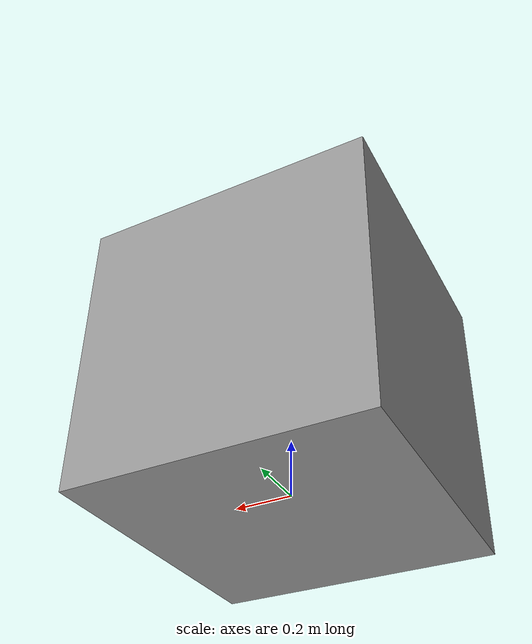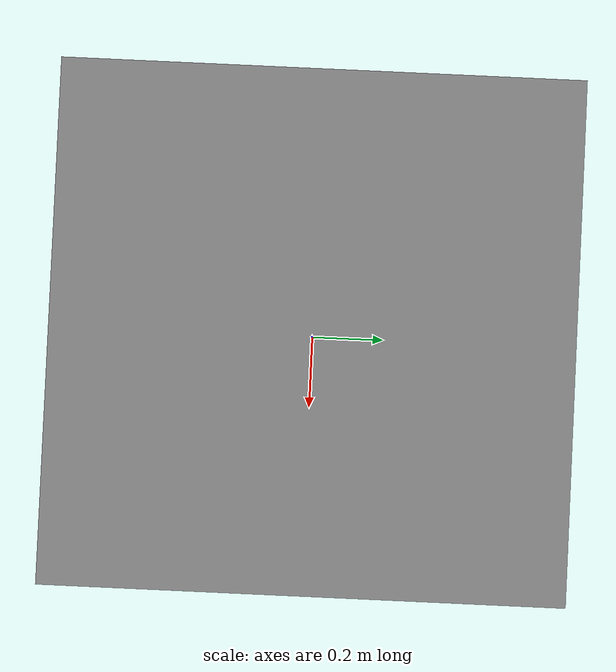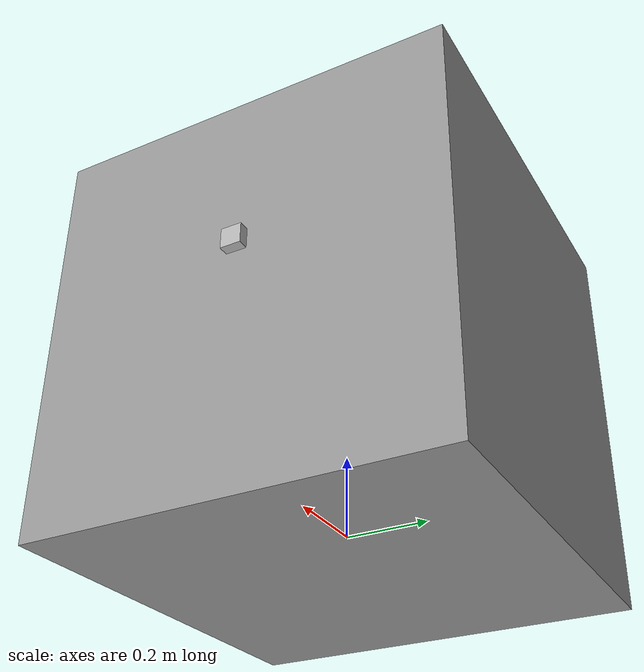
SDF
<?xml version='1.0'?>
<sdf version='1.4'>
  <model name='test_model'>
	<plugin name = 'test_plugin' filename = 'build/libCarPlugin.so'/>
		<!-- BOX OBEJCT -->
    <link name='box_link'>
      <pose frame=''>0 0 0.4 0 0 0</pose>
      <visual name='visual'>
        <pose frame=''>0 0 0 0 -0 0</pose>
        <geometry>
          <box>
            <size>1 1 1</size>
          </box>
        </geometry>
        <material>
          <lighting>1</lighting>
          <script>
            <uri>file://media/materials/scripts/gazebo.material</uri>
            <name>Gazebo/Grey</name>
          </script>
          <ambient>0.3 0.3 0.3 1</ambient>
          <diffuse>0.7 0.7 0.7 1</diffuse>
          <specular>0.01 0.01 0.01 1</specular>
          <emissive>0 0 0 1</emissive>
          <shader type='pixel'/>
        </material>
        <cast_shadows>1</cast_shadows>
        <transparency>0</transparency>
      </visual>
      <collision name='box_collision'>
        <laser_retro>0</laser_retro>
        <max_contacts>10</max_contacts>
        <pose frame=''>0 0 0 0 -0 0</pose>
        <geometry>
          <box>
            <size>1 1 1</size>
          </box>
        </geometry>
        <surface>
          <friction>
            <ode>
              <mu>1</mu>
              <mu2>1</mu2>
              <fdir1>0 0 0</fdir1>
              <slip1>0</slip1>
              <slip2>0</slip2>
            </ode>
          </friction>
          <bounce>
            <restitution_coefficient>0</restitution_coefficient>
            <threshold>1e+06</threshold>
          </bounce>
          <contact>
            <collide_without_contact>0</collide_without_contact>
            <collide_without_contact_bitmask>1</collide_without_contact_bitmask>
            <collide_bitmask>1</collide_bitmask>
            <ode>
              <soft_cfm>0</soft_cfm>
              <soft_erp>0.2</soft_erp>
              <kp>1e+13</kp>
              <kd>1</kd>
              <max_vel>0.01</max_vel>
              <min_depth>0</min_depth>
            </ode>
            <bullet>
              <split_impulse>1</split_impulse>
              <split_impulse_penetration_threshold>-0.01</split_impulse_penetration_threshold>
              <soft_cfm>0</soft_cfm>
              <soft_erp>0.2</soft_erp>
              <kp>1e+13</kp>
              <kd>1</kd>
            </bullet>
          </contact>
        </surface>
      </collision>
    </link>

		<!-- LIDAR SENSOR -->
    <link name='lidar'>
			<sensor name='lidar' type='ray'>
				<plugin name='lidar_plugin' filename='build/liblidar.so'/>
				<pose>0.5 0 0.3 0 0 0</pose>
				<ray>
					<scan>
						<horizontal>
							<samples>640</samples>
							<resolution>1</resolution>
							<min_angle>-1</min_angle>
							<max_angle>1</max_angle>
						</horizontal>
					</scan>
					<range>
						<min>0.8</min>
						<max>15</max>
						<resolution>0.01</resolution>
					</range>
					<noise>
						<type>gaussian</type>
						<mean>0.0</mean>
						<stddev>0.01</stddev>
					</noise>
				</ray>
				<always_on>1</always_on>
				<update_rate>30</update_rate>
				<visualize>true</visualize>
			</sensor>
      <visual name='lidar_visual'>
        <pose>0 0 0 0 0 0</pose>
        <geometry>
          <mesh>
            <uri>model://hokuyo/meshes/hokuyo.dae</uri>
          </mesh>
        </geometry>
        <material>
          <lighting>1</lighting>
          <script>
            <uri>file://media/materials/scripts/gazebo.material</uri>
            <name>Gazebo/Grey</name>
          </script>
          <ambient>0.3 0.3 0.3 1</ambient>
          <diffuse>0.7 0.7 0.7 1</diffuse>
          <specular>0.01 0.01 0.01 1</specular>
          <emissive>0 0 0 1</emissive>
          <shader type='vertex'>
            <normal_map>__default__</normal_map>
          </shader>
        </material>
        <cast_shadows>1</cast_shadows>
        <transparency>0</transparency>
      </visual>
      <collision name='lidar_collision'>
        <laser_retro>0</laser_retro>
        <max_contacts>10</max_contacts>
        <pose>0 0 0 0 0 0</pose>
        <geometry>
          <mesh>
            <uri>model://hokuyo/meshes/hokuyo.dae</uri>
          </mesh>
        </geometry>
        <surface>
          <friction>
            <ode>
              <mu>1</mu>
              <mu2>1</mu2>
              <fdir1>0 0 0</fdir1>
              <slip1>0</slip1>
              <slip2>0</slip2>
            </ode>
          </friction>
          <bounce>
            <restitution_coefficient>0</restitution_coefficient>
            <threshold>1e+06</threshold>
          </bounce>
          <contact>
            <collide_without_contact>0</collide_without_contact>
            <collide_without_contact_bitmask>1</collide_without_contact_bitmask>
            <collide_bitmask>1</collide_bitmask>
            <ode>
              <soft_cfm>0</soft_cfm>
              <soft_erp>0.2</soft_erp>
              <kp>1e+13</kp>
              <kd>1</kd>
              <max_vel>0.01</max_vel>
              <min_depth>0</min_depth>
            </ode>
            <bullet>
              <split_impulse>1</split_impulse>
              <split_impulse_penetration_threshold>-0.01</split_impulse_penetration_threshold>
              <soft_cfm>0</soft_cfm>
              <soft_erp>0.2</soft_erp>
              <kp>1e+13</kp>
              <kd>1</kd>
            </bullet>
          </contact>
        </surface>
      </collision>
    </link>

		<!-- CAMERA -->
		<link name='camera_link'>
			<pose>0.5 0 0.5 0 0 0</pose>
			<self_collide>0</self_collide>
			<kinematic>0</kinematic>

			<sensor name='camera' type='multicamera'>
				<always_on>1</always_on>
				<update_rate>24</update_rate>
				<visualize>0</visualize>
				<topic>sdcCar_camera</topic>
				<camera name='center'>
					<pose>0 0 0 0 0 0</pose>
					<horizontal_fov>1</horizontal_fov>
					<image>
						<width>640</width>
						<height>480</height>
					</image>
					<clip>
						<near>0.1</near>
						<far>100</far>
					</clip>
					<save enabled='False'>
					</save>
				</camera>
				<plugin name='camera_plugin' filename='build/libcamera.so'/>
			</sensor>
			<visual name='visual'>
				<geometry>
					<box>
						<size>0.05 0.05 0.05</size>
					</box>
				</geometry>
				<material>
					<shader type='pixel'/>
				</material>
				<pose>0 0 0 0 0 0</pose>
				<cast_shadows>1</cast_shadows>
				<transparency>0</transparency>
			</visual>
		</link>

		<!-- JOINT BETWEEN CAMERA AND CAR -->
		<joint name='camera' type='revolute'>
			<parent>box_link</parent>
			<child>camera_link</child>
			<axis>
				<xyz>0 0 1</xyz>
				<use_parent_model_frame>0</use_parent_model_frame>
				<limit>
					<lower>0</lower>
					<upper>0</upper>
					<effort>-1</effort>
					<velocity>-1</velocity>
				</limit>
				<dynamics>
					<spring_reference>0</spring_reference>
					<spring_stiffness>0</spring_stiffness>
					<damping>0</damping>
					<friction>0</friction>
				</dynamics>
			</axis>
			<physics>
				<ode>
					<limit>
						<cfm>0</cfm>
						<erp>0.2</erp>
					</limit>
					<suspension>
						<cfm>0</cfm>
						<erp>0.2</erp>
					</suspension>
				</ode>
			</physics>
		</joint>

		<!-- JOINT BETWEEN LIDAR AND CAR -->
    <joint name='link_1_JOINT_0' type='revolute'>
      <parent>box_link</parent>
      <child>lidar</child>
      <pose frame=''>0 0 0 0 -0 0</pose>
      <axis>
        <xyz>0 0 1</xyz>
        <use_parent_model_frame>0</use_parent_model_frame>
        <limit>
          <lower>0</lower>
          <upper>0</upper>
          <effort>-1</effort>
          <velocity>-1</velocity>
        </limit>
        <dynamics>
          <spring_reference>0</spring_reference>
          <spring_stiffness>0</spring_stiffness>
          <damping>0</damping>
        </dynamics>
      </axis>
      <physics>
        <ode>
          <limit>
            <cfm>0</cfm>
            <erp>0.2</erp>
          </limit>
          <suspension>
            <cfm>0</cfm>
            <erp>0.2</erp>
          </suspension>
        </ode>
      </physics>
    </joint>
    <static>0</static>
    <allow_auto_disable>1</allow_auto_disable>
  </model>
</sdf>
